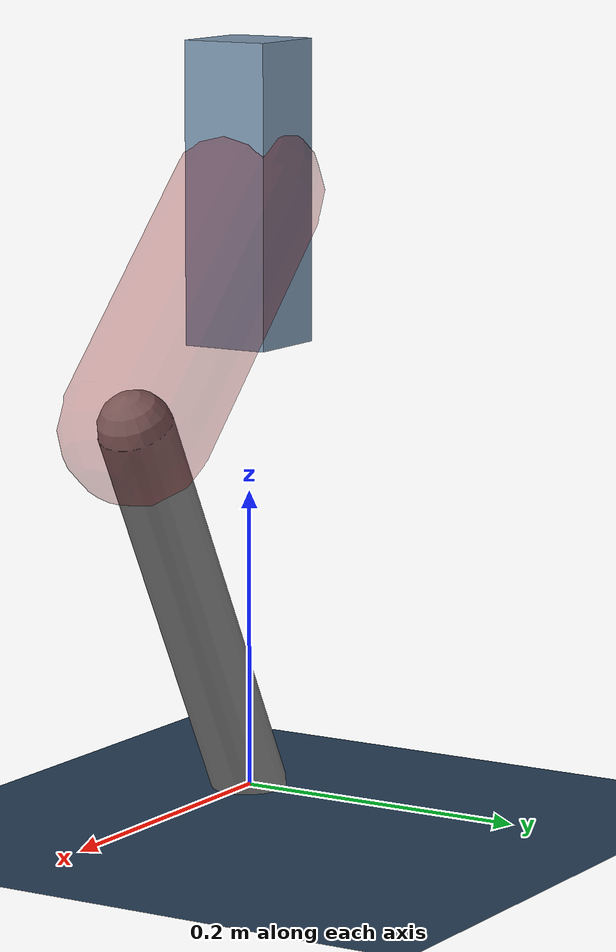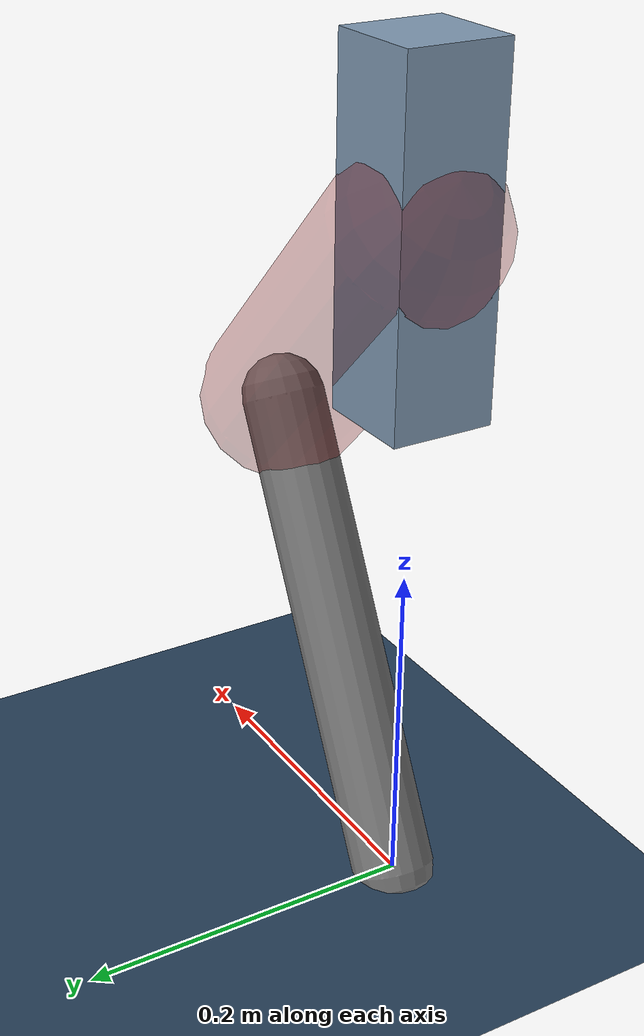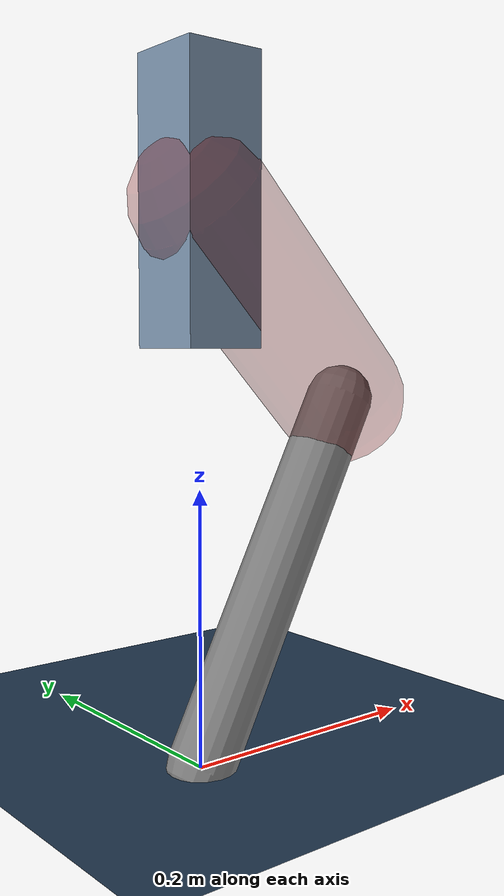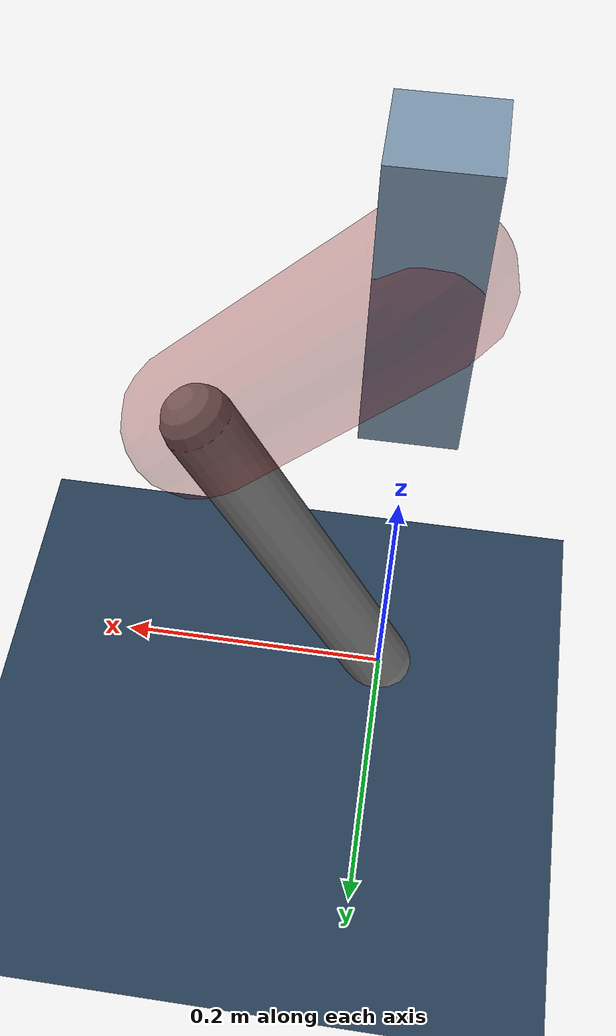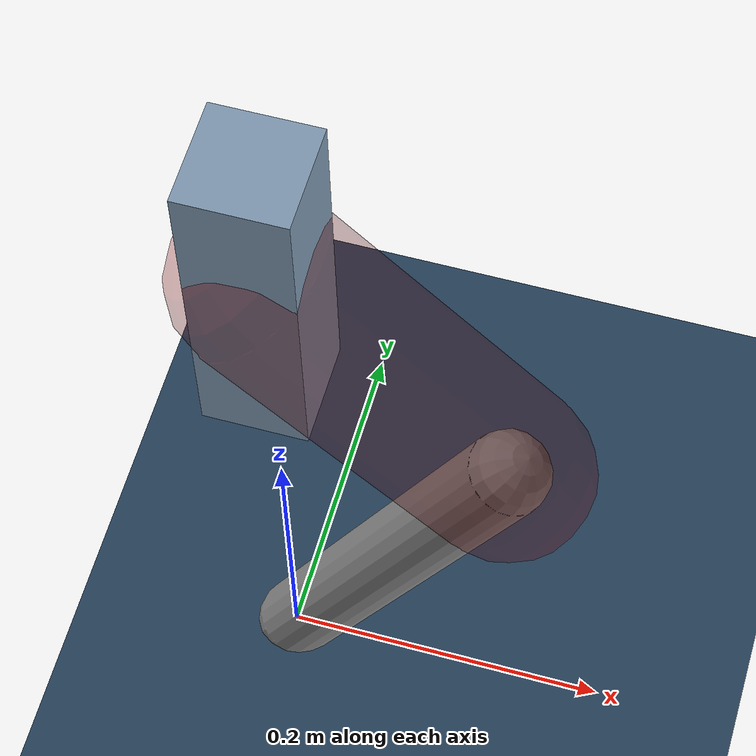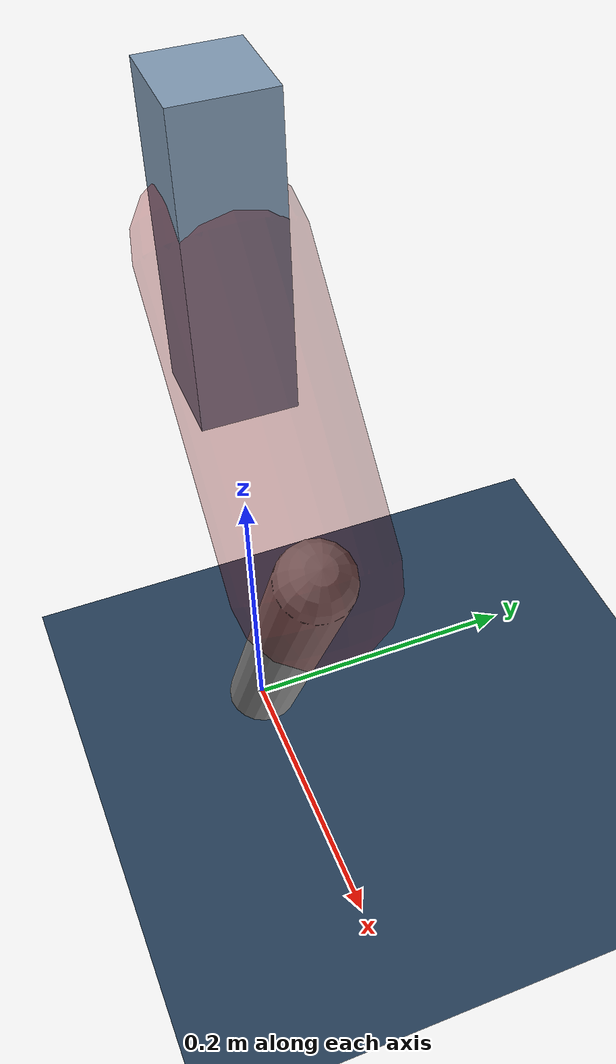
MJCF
<mujoco model="Hopper2D">
	<compiler inertiafromgeom="true" angle="radian" />
	<option timestep="0.001" integrator="implicit" cone="elliptic" solver="Newton" tolerance="1e-10" />

	<default>
		<geom contype="1" conaffinity="1" condim="3" friction="2 0.005 0.0001" solref="0.005 1" />
		<joint limited="true" damping="0.1" />
	</default>

	<asset>
		<texture name="skybox" type="skybox" builtin="gradient" rgb1=".4 .6 .8" rgb2="0 0 0" width="800" height="800" />
		<texture name="grid" type="2d" builtin="checker" rgb1=".1 .2 .3" rgb2=".2 .3 .4" width="300" height="300" mark="edge" markrgb=".2 .3 .4" />
		<material name="ground" texture="grid" texrepeat="1 1" texuniform="true" reflectance="0.1" />
		<material name="leg" rgba="0.5 0.6 0.7 1" />
	</asset>

	<worldbody>

		<geom name="floor" type="plane" size="5 5 0.25" material="ground" />

		<light directional="false" diffuse="0.8 0.8 0.8" specular="0.3 0.3 0.3" pos="0 0 2" dir="0 0 -1" />
		<light mode="targetbodycom" target="base" directional="false" diffuse="0.8 0.8 0.8" specular="0.3 0.3 0.3" pos="0 0 2" dir="0 0 -1" />

		<camera name="fixed" pos="0 -2 1" xyaxes="1 0 0 0 0 1" />
		<camera name="tracking" mode="trackcom" pos="0 -3 1" />

		<body name="root" pos="0 0 0.3988426620934991">
			<joint name="slide_x" type="slide" axis="1 0 0" range="-100 100" />
			<joint name="slide_z" type="slide" axis="0 0 1" range="0 10" />

			<body name="base" pos="0 0 0">
				<geom name="torso" type="box" size="0.03 0.03 0.1" mass="2.1149999999999998" material="leg" />

				<body name="link1" pos="0 0 0" euler="0 0.798441806728959 0">
					<joint type="hinge" axis="0 -1 0" pos="0 0 0" name="hinge1" limited="true" range="-3.14 3.14" stiffness="0" damping="0.1" />
					<geom name="thigh" type="capsule" fromto="0 0 0 0.1924901353149805 0 0" size="0.05" rgba="0.5 0 0 0.3" mass="0.7110763247559532" />

					<body name="link2" pos="0.1924901353149805 0 0" euler="0 1.2477050510441743 0">
						<joint type="hinge" axis="0 -1 0" pos="0 0 0" name="hinge2" limited="true" range="-3.14 3.14" stiffness="0" damping="0.1" />
						<geom name="shank" type="capsule" fromto="0 0 0 0.2935084129668608 0 0" size="0.025" mass="0.47810673037348866" />

					</body>
				</body>
			</body>
		</body>
	</worldbody>

	<actuator>
		<motor name="torque1" joint="hinge1" ctrlrange="-13.947253722186097 13.947253722186097" ctrllimited="true" gear="1" />
		<motor name="torque2" joint="hinge2" ctrlrange="-48.941956650321835 48.941956650321835" ctrllimited="true" gear="1" />
	</actuator>
</mujoco>
